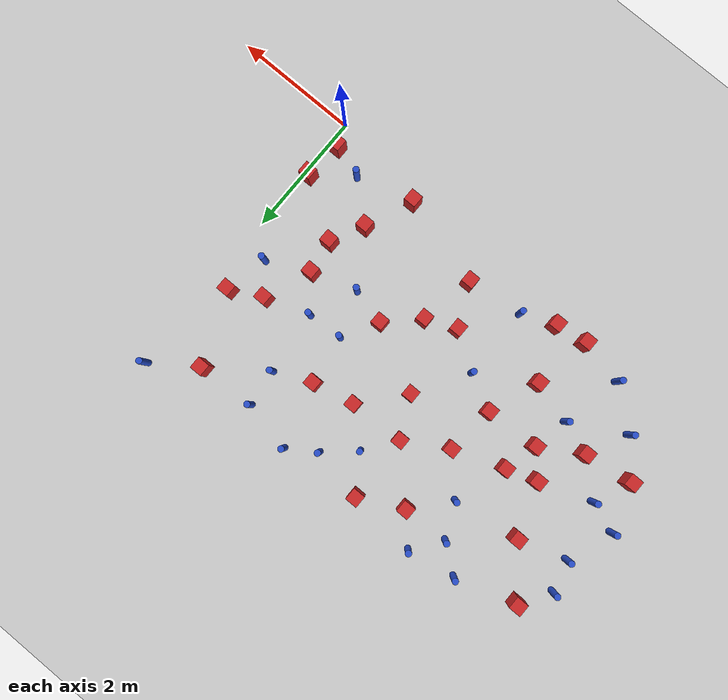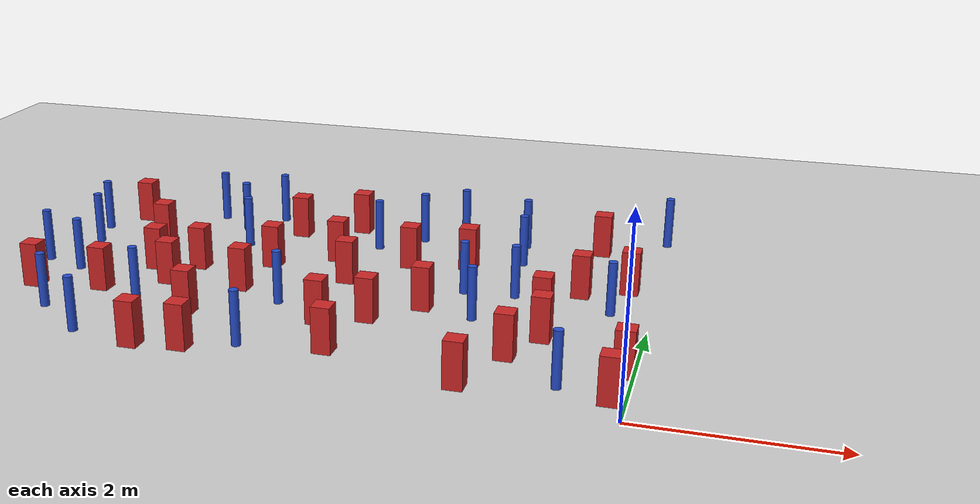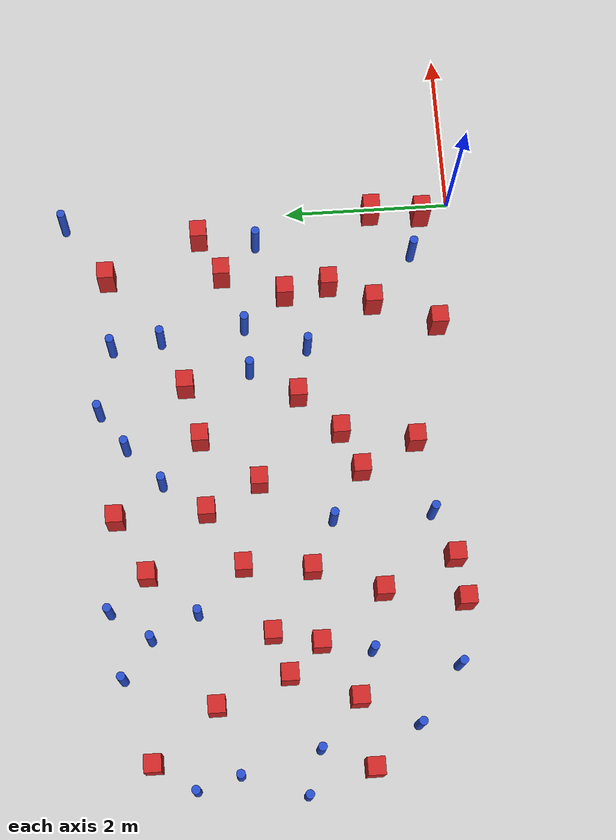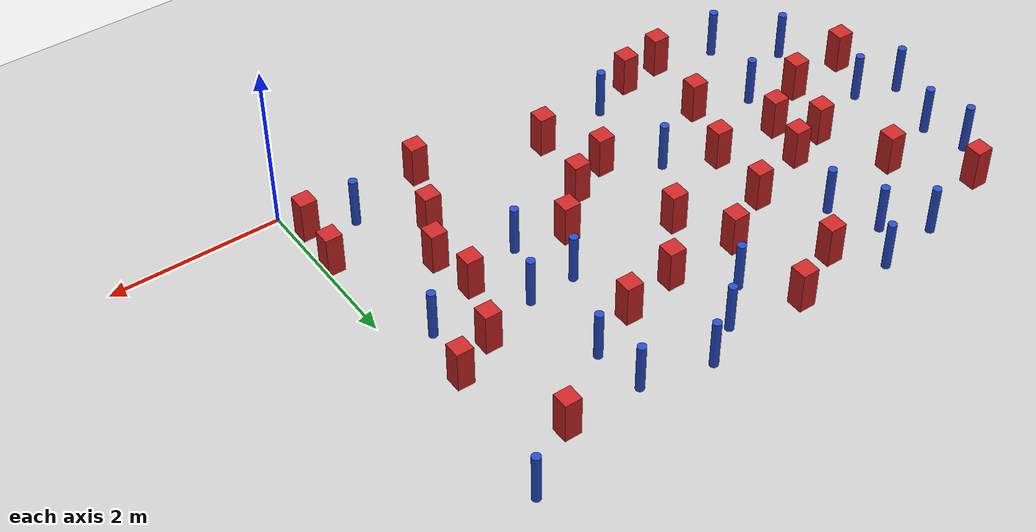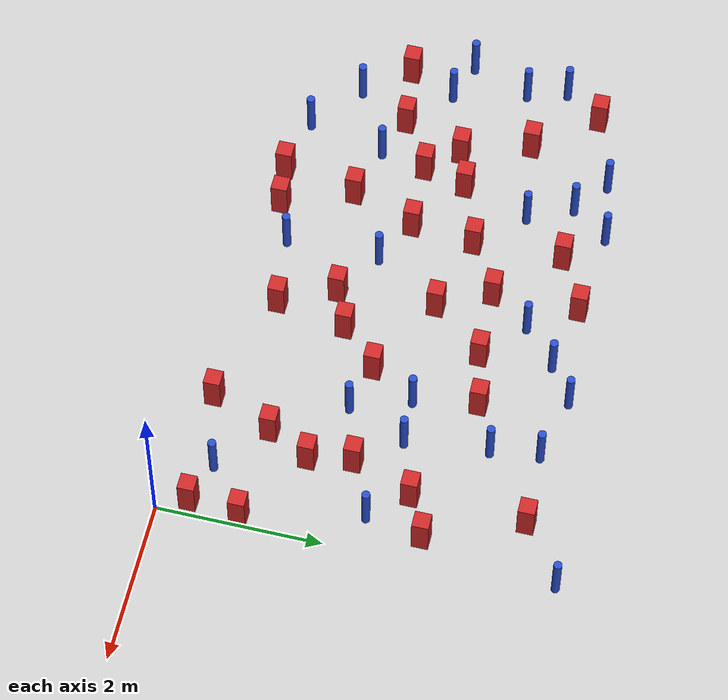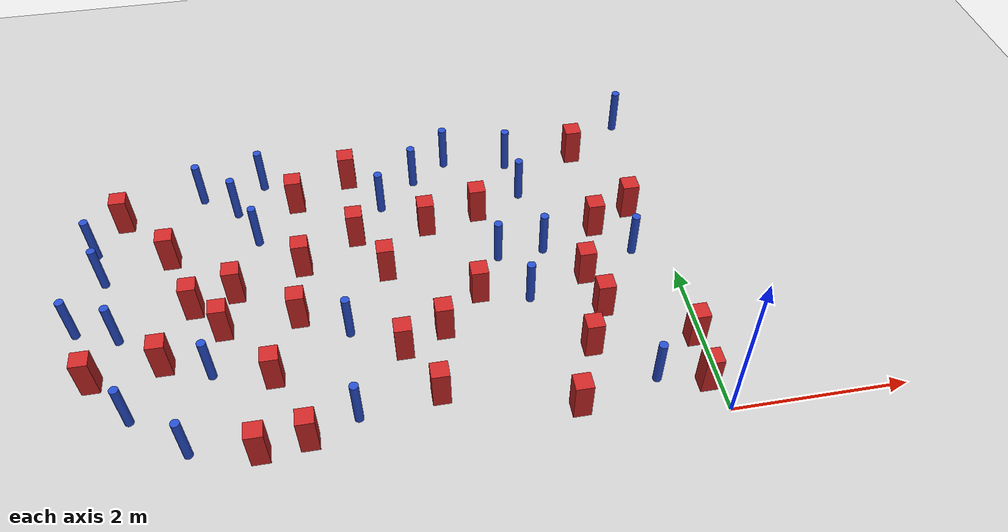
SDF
<sdf version="1.6">
 <world name="default">
  <model name="ground_plane">
   <static>1</static>
   <link name="link">
    <collision name="collision">
     <geometry><plane><normal>0 0 1</normal><size>100 100</size></plane></geometry>
     <surface><friction><ode><mu>100</mu><mu2>50</mu2></ode></friction></surface>
    </collision>
    <visual name="visual">
     <cast_shadows>0</cast_shadows>
     <geometry><plane><normal>0 0 1</normal><size>100 100</size></plane></geometry>
     <material>
      <ambient>1.0 1.0 1.0 1.0</ambient>
      <diffuse>0.8 0.8 0.8 1.0</diffuse>
      <specular>0.01 0.01 0.01 1.000000</specular>
     </material>
    </visual>
   </link>
  </model>
  <model name="pole_obstacle0">
   <static>true</static>
   <pose>-2.06327848858 2.57879154293 2.88873142074e-08 -9.90536690232e-09 4.6021994898e-07 -1.20965994968e-07</pose>
   <link name="link">
    <pose>0 0 0.3 0 -0 0</pose>
    <inertial>
     <mass>1</mass>
     <inertia><ixx>0.145833</ixx><ixy>0</ixy><ixz>0</ixz><iyy>0.145833</iyy><iyz>0</iyz><izz>0.125</izz></inertia>
    </inertial>
    <collision name="collision">
     <geometry><cylinder><radius>0.05</radius><length>.6</length></cylinder></geometry>
    </collision>
    <visual name="visual">
     <geometry><cylinder><radius>0.05</radius><length>.6</length></cylinder></geometry>
     <material>
      <script><name>Gazebo/Blue</name><uri>file://media/materials/scripts/gazebo.material</uri></script>
     </material>
    </visual>
   </link>
  </model>
  <model name="square_post_obstacle3">
   <static>true</static>
   <pose>-6.55645014747 3.90989048557 8.22691968438e-08 7.2212513382e-06 -7.54495500217e-07 2.29674213826e-05</pose>
   <link name="link">
    <pose>0 0 0.25 0 -0 0</pose>
    <inertial>
     <mass>100</mass>
     <inertia>
      <ixx>0.166667</ixx>
      <ixy>0</ixy>
      <ixz>0</ixz>
      <iyy>0.166667</iyy>
      <iyz>0</iyz>
      <izz>0.166667</izz>
     </inertia>
    </inertial>
    <collision name="collision"><geometry><box><size>.2 .2 .5</size></box></geometry></collision>
    <visual name="visual">
     <geometry><box><size>.2 .2 .5</size></box></geometry>
     <material>
      <script><name>Gazebo/Red</name><uri>file://media/materials/scripts/gazebo.material</uri></script>
     </material>
    </visual>
   </link>
  </model>
  <model name="square_post_obstacle6">
   <static>true</static>
   <pose>-4.39942618773 2.79059757768 8.22691968438e-08 7.2212513382e-06 -7.54495500217e-07 2.29674213826e-05</pose>
   <link name="link">
    <pose>0 0 0.25 0 -0 0</pose>
    <inertial>
     <mass>100</mass>
     <inertia>
      <ixx>0.166667</ixx>
      <ixy>0</ixy>
      <ixz>0</ixz>
      <iyy>0.166667</iyy>
      <iyz>0</iyz>
      <izz>0.166667</izz>
     </inertia>
    </inertial>
    <collision name="collision"><geometry><box><size>.2 .2 .5</size></box></geometry></collision>
    <visual name="visual">
     <geometry><box><size>.2 .2 .5</size></box></geometry>
     <material>
      <script><name>Gazebo/Red</name><uri>file://media/materials/scripts/gazebo.material</uri></script>
     </material>
    </visual>
   </link>
  </model>
  <model name="pole_obstacle4">
   <static>true</static>
   <pose>-5.45214630554 1.39098894112 2.88873142074e-08 -9.90536689445e-09 4.60219948999e-07 -1.20965994956e-07</pose>
   <link name="link">
    <pose>0 0 0.3 0 -0 0</pose>
    <inertial>
     <mass>1</mass>
     <inertia><ixx>0.145833</ixx><ixy>0</ixy><ixz>0</ixz><iyy>0.145833</iyy><iyz>0</iyz><izz>0.125</izz></inertia>
    </inertial>
    <collision name="collision">
     <geometry><cylinder><radius>0.05</radius><length>.6</length></cylinder></geometry>
    </collision>
    <visual name="visual">
     <geometry><cylinder><radius>0.05</radius><length>.6</length></cylinder></geometry>
     <material>
      <script><name>Gazebo/Blue</name><uri>file://media/materials/scripts/gazebo.material</uri></script>
     </material>
    </visual>
   </link>
  </model>
  <model name="pole_obstacle6">
   <static>true</static>
   <pose>-3.38358671933 3.67532625246 2.88873142074e-08 -9.90536690232e-09 4.6021994898e-07 -1.20965994968e-07</pose>
   <link name="link">
    <pose>0 0 0.3 0 -0 0</pose>
    <inertial>
     <mass>1</mass>
     <inertia><ixx>0.145833</ixx><ixy>0</ixy><ixz>0</ixz><iyy>0.145833</iyy><iyz>0</iyz><izz>0.125</izz></inertia>
    </inertial>
    <collision name="collision">
     <geometry><cylinder><radius>0.05</radius><length>.6</length></cylinder></geometry>
    </collision>
    <visual name="visual">
     <geometry><cylinder><radius>0.05</radius><length>.6</length></cylinder></geometry>
     <material>
      <script><name>Gazebo/Blue</name><uri>file://media/materials/scripts/gazebo.material</uri></script>
     </material>
    </visual>
   </link>
  </model>
  <model name="pole_obstacle7">
   <static>true</static>
   <pose>-1.61402399077 3.61474641128 2.88873142074e-08 -9.90536689791e-09 4.6021994899e-07 -1.20965994959e-07</pose>
   <link name="link">
    <pose>0 0 0.3 0 -0 0</pose>
    <inertial>
     <mass>1</mass>
     <inertia><ixx>0.145833</ixx><ixy>0</ixy><ixz>0</ixz><iyy>0.145833</iyy><iyz>0</iyz><izz>0.125</izz></inertia>
    </inertial>
    <collision name="collision">
     <geometry><cylinder><radius>0.05</radius><length>.6</length></cylinder></geometry>
    </collision>
    <visual name="visual">
     <geometry><cylinder><radius>0.05</radius><length>.6</length></cylinder></geometry>
     <material>
      <script><name>Gazebo/Blue</name><uri>file://media/materials/scripts/gazebo.material</uri></script>
     </material>
    </visual>
   </link>
  </model>
  <model name="square_post_obstacle11">
   <static>true</static>
   <pose>-5.96716999815 3.17955191712 8.22691968438e-08 7.2212513382e-06 -7.54495500217e-07 2.29674213826e-05</pose>
   <link name="link">
    <pose>0 0 0.25 0 -0 0</pose>
    <inertial>
     <mass>100</mass>
     <inertia>
      <ixx>0.166667</ixx>
      <ixy>0</ixy>
      <ixz>0</ixz>
      <iyy>0.166667</iyy>
      <iyz>0</iyz>
      <izz>0.166667</izz>
     </inertia>
    </inertial>
    <collision name="collision"><geometry><box><size>.2 .2 .5</size></box></geometry></collision>
    <visual name="visual">
     <geometry><box><size>.2 .2 .5</size></box></geometry>
     <material>
      <script><name>Gazebo/Red</name><uri>file://media/materials/scripts/gazebo.material</uri></script>
     </material>
    </visual>
   </link>
  </model>
  <model name="square_post_obstacle17">
   <static>true</static>
   <pose>-1.27304721057 1.04541945951 8.22691968438e-08 7.2212513382e-06 -7.54495500217e-07 2.29674213826e-05</pose>
   <link name="link">
    <pose>0 0 0.25 0 -0 0</pose>
    <inertial>
     <mass>100</mass>
     <inertia>
      <ixx>0.166667</ixx>
      <ixy>0</ixy>
      <ixz>0</ixz>
      <iyy>0.166667</iyy>
      <iyz>0</iyz>
      <izz>0.166667</izz>
     </inertia>
    </inertial>
    <collision name="collision"><geometry><box><size>.2 .2 .5</size></box></geometry></collision>
    <visual name="visual">
     <geometry><box><size>.2 .2 .5</size></box></geometry>
     <material>
      <script><name>Gazebo/Red</name><uri>file://media/materials/scripts/gazebo.material</uri></script>
     </material>
    </visual>
   </link>
  </model>
  <model name="square_post_obstacle18">
   <static>true</static>
   <pose>-3.41731523094 2.54991791525 8.22691968438e-08 7.2212513382e-06 -7.54495500217e-07 2.29674213826e-05</pose>
   <link name="link">
    <pose>0 0 0.25 0 -0 0</pose>
    <inertial>
     <mass>100</mass>
     <inertia>
      <ixx>0.166667</ixx>
      <ixy>0</ixy>
      <ixz>0</ixz>
      <iyy>0.166667</iyy>
      <iyz>0</iyz>
      <izz>0.166667</izz>
     </inertia>
    </inertial>
    <collision name="collision"><geometry><box><size>.2 .2 .5</size></box></geometry></collision>
    <visual name="visual">
     <geometry><box><size>.2 .2 .5</size></box></geometry>
     <material>
      <script><name>Gazebo/Red</name><uri>file://media/materials/scripts/gazebo.material</uri></script>
     </material>
    </visual>
   </link>
  </model>
  <model name="pole_obstacle29">
   <static>true</static>
   <pose>-6.87307380229 3.44570202861 2.88873142074e-08 -9.90536690245e-09 4.6021994898e-07 -1.20965994966e-07</pose>
   <link name="link">
    <pose>0 0 0.3 0 -0 0</pose>
    <inertial>
     <mass>1</mass>
     <inertia><ixx>0.145833</ixx><ixy>0</ixy><ixz>0</ixz><iyy>0.145833</iyy><iyz>0</iyz><izz>0.125</izz></inertia>
    </inertial>
    <collision name="collision">
     <geometry><cylinder><radius>0.05</radius><length>.6</length></cylinder></geometry>
    </collision>
    <visual name="visual">
     <geometry><cylinder><radius>0.05</radius><length>.6</length></cylinder></geometry>
     <material>
      <script><name>Gazebo/Blue</name><uri>file://media/materials/scripts/gazebo.material</uri></script>
     </material>
    </visual>
   </link>
  </model>
  <model name="pole_obstacle37">
   <static>true</static>
   <pose>-5.1838215764 3.87968076102 2.88873142074e-08 -9.90536690245e-09 4.6021994898e-07 -1.20965994966e-07</pose>
   <link name="link">
    <pose>0 0 0.3 0 -0 0</pose>
    <inertial>
     <mass>1</mass>
     <inertia><ixx>0.145833</ixx><ixy>0</ixy><ixz>0</ixz><iyy>0.145833</iyy><iyz>0</iyz><izz>0.125</izz></inertia>
    </inertial>
    <collision name="collision">
     <geometry><cylinder><radius>0.05</radius><length>.6</length></cylinder></geometry>
    </collision>
    <visual name="visual">
     <geometry><cylinder><radius>0.05</radius><length>.6</length></cylinder></geometry>
     <material>
      <script><name>Gazebo/Blue</name><uri>file://media/materials/scripts/gazebo.material</uri></script>
     </material>
    </visual>
   </link>
  </model>
  <model name="square_post_obstacle38">
   <static>true</static>
   <pose>-4.44067790375 3.89282106726 8.22691968438e-08 7.2212513382e-06 -7.54495500217e-07 2.29674213826e-05</pose>
   <link name="link">
    <pose>0 0 0.25 0 -0 0</pose>
    <inertial>
     <mass>100</mass>
     <inertia>
      <ixx>0.166667</ixx>
      <ixy>0</ixy>
      <ixz>0</ixz>
      <iyy>0.166667</iyy>
      <iyz>0</iyz>
      <izz>0.166667</izz>
     </inertia>
    </inertial>
    <collision name="collision"><geometry><box><size>.2 .2 .5</size></box></geometry></collision>
    <visual name="visual">
     <geometry><box><size>.2 .2 .5</size></box></geometry>
     <material>
      <script><name>Gazebo/Red</name><uri>file://media/materials/scripts/gazebo.material</uri></script>
     </material>
    </visual>
   </link>
  </model>
  <model name="pole_obstacle40">
   <static>true</static>
   <pose>-2.48389087228 4.37726319521 2.88873142074e-08 -9.90536689859e-09 4.60219948989e-07 -1.20965994961e-07</pose>
   <link name="link">
    <pose>0 0 0.3 0 -0 0</pose>
    <inertial>
     <mass>1</mass>
     <inertia><ixx>0.145833</ixx><ixy>0</ixy><ixz>0</ixz><iyy>0.145833</iyy><iyz>0</iyz><izz>0.125</izz></inertia>
    </inertial>
    <collision name="collision">
     <geometry><cylinder><radius>0.05</radius><length>.6</length></cylinder></geometry>
    </collision>
    <visual name="visual">
     <geometry><cylinder><radius>0.05</radius><length>.6</length></cylinder></geometry>
     <material>
      <script><name>Gazebo/Blue</name><uri>file://media/materials/scripts/gazebo.material</uri></script>
     </material>
    </visual>
   </link>
  </model>
  <model name="pole_obstacle50">
   <static>true</static>
   <pose>-0.065903541573 4.73085245209 2.88873142074e-08 -9.90536689653e-09 4.60219948994e-07 -1.20965994959e-07</pose>
   <link name="link">
    <pose>0 0 0.3 0 -0 0</pose>
    <inertial>
     <mass>1</mass>
     <inertia><ixx>0.145833</ixx><ixy>0</ixy><ixz>0</ixz><iyy>0.145833</iyy><iyz>0</iyz><izz>0.125</izz></inertia>
    </inertial>
    <collision name="collision">
     <geometry><cylinder><radius>0.05</radius><length>.6</length></cylinder></geometry>
    </collision>
    <visual name="visual">
     <geometry><cylinder><radius>0.05</radius><length>.6</length></cylinder></geometry>
     <material>
      <script><name>Gazebo/Blue</name><uri>file://media/materials/scripts/gazebo.material</uri></script>
     </material>
    </visual>
   </link>
  </model>
  <model name="square_post_obstacle55">
   <static>true</static>
   <pose>-6.73687707223 1.47962045912 8.22691968438e-08 7.2212513382e-06 -7.54495500217e-07 2.29674213826e-05</pose>
   <link name="link">
    <pose>0 0 0.25 0 -0 0</pose>
    <inertial>
     <mass>100</mass>
     <inertia>
      <ixx>0.166667</ixx>
      <ixy>0</ixy>
      <ixz>0</ixz>
      <iyy>0.166667</iyy>
      <iyz>0</iyz>
      <izz>0.166667</izz>
     </inertia>
    </inertial>
    <collision name="collision"><geometry><box><size>.2 .2 .5</size></box></geometry></collision>
    <visual name="visual">
     <geometry><box><size>.2 .2 .5</size></box></geometry>
     <material>
      <script><name>Gazebo/Red</name><uri>file://media/materials/scripts/gazebo.material</uri></script>
     </material>
    </visual>
   </link>
  </model>
  <model name="pole_obstacle54">
   <static>true</static>
   <pose>-5.67199320555 0.430135171374 2.88873142074e-08 -9.90536689981e-09 4.60219948986e-07 -1.20965994962e-07</pose>
   <link name="link">
    <pose>0 0 0.3 0 -0 0</pose>
    <inertial>
     <mass>1</mass>
     <inertia><ixx>0.145833</ixx><ixy>0</ixy><ixz>0</ixz><iyy>0.145833</iyy><iyz>0</iyz><izz>0.125</izz></inertia>
    </inertial>
    <collision name="collision">
     <geometry><cylinder><radius>0.05</radius><length>.6</length></cylinder></geometry>
    </collision>
    <visual name="visual">
     <geometry><cylinder><radius>0.05</radius><length>.6</length></cylinder></geometry>
     <material>
      <script><name>Gazebo/Blue</name><uri>file://media/materials/scripts/gazebo.material</uri></script>
     </material>
    </visual>
   </link>
  </model>
  <model name="square_post_obstacle61">
   <static>true</static>
   <pose>-0.311978459862 3.09757775151 8.22691968438e-08 7.2212513382e-06 -7.54495500217e-07 2.29674213826e-05</pose>
   <link name="link">
    <pose>0 0 0.25 0 -0 0</pose>
    <inertial>
     <mass>100</mass>
     <inertia>
      <ixx>0.166667</ixx>
      <ixy>0</ixy>
      <ixz>0</ixz>
      <iyy>0.166667</iyy>
      <iyz>0</iyz>
      <izz>0.166667</izz>
     </inertia>
    </inertial>
    <collision name="collision"><geometry><box><size>.2 .2 .5</size></box></geometry></collision>
    <visual name="visual">
     <geometry><box><size>.2 .2 .5</size></box></geometry>
     <material>
      <script><name>Gazebo/Red</name><uri>file://media/materials/scripts/gazebo.material</uri></script>
     </material>
    </visual>
   </link>
  </model>
  <model name="square_post_obstacle68">
   <static>true</static>
   <pose>-4.77301152274 1.21168934661 8.22691968438e-08 7.2212513382e-06 -7.54495500217e-07 2.29674213826e-05</pose>
   <link name="link">
    <pose>0 0 0.25 0 -0 0</pose>
    <inertial>
     <mass>100</mass>
     <inertia>
      <ixx>0.166667</ixx>
      <ixy>0</ixy>
      <ixz>0</ixz>
      <iyy>0.166667</iyy>
      <iyz>0</iyz>
      <izz>0.166667</izz>
     </inertia>
    </inertial>
    <collision name="collision"><geometry><box><size>.2 .2 .5</size></box></geometry></collision>
    <visual name="visual">
     <geometry><box><size>.2 .2 .5</size></box></geometry>
     <material>
      <script><name>Gazebo/Red</name><uri>file://media/materials/scripts/gazebo.material</uri></script>
     </material>
    </visual>
   </link>
  </model>
  <model name="pole_obstacle69">
   <static>true</static>
   <pose>-6.73661554646 2.95450943596 2.88873142074e-08 -9.90536690245e-09 4.6021994898e-07 -1.20965994966e-07</pose>
   <link name="link">
    <pose>0 0 0.3 0 -0 0</pose>
    <inertial>
     <mass>1</mass>
     <inertia><ixx>0.145833</ixx><ixy>0</ixy><ixz>0</ixz><iyy>0.145833</iyy><iyz>0</iyz><izz>0.125</izz></inertia>
    </inertial>
    <collision name="collision">
     <geometry><cylinder><radius>0.05</radius><length>.6</length></cylinder></geometry>
    </collision>
    <visual name="visual">
     <geometry><cylinder><radius>0.05</radius><length>.6</length></cylinder></geometry>
     <material>
      <script><name>Gazebo/Blue</name><uri>file://media/materials/scripts/gazebo.material</uri></script>
     </material>
    </visual>
   </link>
  </model>
  <model name="square_post_obstacle78">
   <static>true</static>
   <pose>-2.86003846571 1.55921314921 8.22691968438e-08 7.2212513382e-06 -7.54495500217e-07 2.29674213826e-05</pose>
   <link name="link">
    <pose>0 0 0.25 0 -0 0</pose>
    <inertial>
     <mass>100</mass>
     <inertia>
      <ixx>0.166667</ixx>
      <ixy>0</ixy>
      <ixz>0</ixz>
      <iyy>0.166667</iyy>
      <iyz>0</iyz>
      <izz>0.166667</izz>
     </inertia>
    </inertial>
    <collision name="collision"><geometry><box><size>.2 .2 .5</size></box></geometry></collision>
    <visual name="visual">
     <geometry><box><size>.2 .2 .5</size></box></geometry>
     <material>
      <script><name>Gazebo/Red</name><uri>file://media/materials/scripts/gazebo.material</uri></script>
     </material>
    </visual>
   </link>
  </model>
  <model name="square_post_obstacle89">
   <static>true</static>
   <pose>-4.43235889058 0.362734670037 8.22691968438e-08 7.2212513382e-06 -7.54495500217e-07 2.29674213826e-05</pose>
   <link name="link">
    <pose>0 0 0.25 0 -0 0</pose>
    <inertial>
     <mass>100</mass>
     <inertia>
      <ixx>0.166667</ixx>
      <ixy>0</ixy>
      <ixz>0</ixz>
      <iyy>0.166667</iyy>
      <iyz>0</iyz>
      <izz>0.166667</izz>
     </inertia>
    </inertial>
    <collision name="collision"><geometry><box><size>.2 .2 .5</size></box></geometry></collision>
    <visual name="visual">
     <geometry><box><size>.2 .2 .5</size></box></geometry>
     <material>
      <script><name>Gazebo/Red</name><uri>file://media/materials/scripts/gazebo.material</uri></script>
     </material>
    </visual>
   </link>
  </model>
  <model name="pole_obstacle107">
   <static>true</static>
   <pose>-1.80683374929 1.87409542558 2.88873142074e-08 -9.90536689672e-09 4.60219948993e-07 -1.20965994959e-07</pose>
   <link name="link">
    <pose>0 0 0.3 0 -0 0</pose>
    <inertial>
     <mass>1</mass>
     <inertia><ixx>0.145833</ixx><ixy>0</ixy><ixz>0</ixz><iyy>0.145833</iyy><iyz>0</iyz><izz>0.125</izz></inertia>
    </inertial>
    <collision name="collision">
     <geometry><cylinder><radius>0.05</radius><length>.6</length></cylinder></geometry>
    </collision>
    <visual name="visual">
     <geometry><cylinder><radius>0.05</radius><length>.6</length></cylinder></geometry>
     <material>
      <script><name>Gazebo/Blue</name><uri>file://media/materials/scripts/gazebo.material</uri></script>
     </material>
    </visual>
   </link>
  </model>
  <model name="square_post_obstacle95">
   <static>true</static>
   <pose>-0.781421788641 4.23457113308 8.22691968438e-08 7.2212513382e-06 -7.54495500217e-07 2.29674213826e-05</pose>
   <link name="link">
    <pose>0 0 0.25 0 -0 0</pose>
    <inertial>
     <mass>100</mass>
     <inertia>
      <ixx>0.166667</ixx>
      <ixy>0</ixy>
      <ixz>0</ixz>
      <iyy>0.166667</iyy>
      <iyz>0</iyz>
      <izz>0.166667</izz>
     </inertia>
    </inertial>
    <collision name="collision"><geometry><box><size>.2 .2 .5</size></box></geometry></collision>
    <visual name="visual">
     <geometry><box><size>.2 .2 .5</size></box></geometry>
     <material>
      <script><name>Gazebo/Red</name><uri>file://media/materials/scripts/gazebo.material</uri></script>
     </material>
    </visual>
   </link>
  </model>
  <model name="pole_obstacle109">
   <static>true</static>
   <pose>-0.430208164461 2.41103096239 2.88873142074e-08 -9.90536689663e-09 4.60219948993e-07 -1.20965994959e-07</pose>
   <link name="link">
    <pose>0 0 0.3 0 -0 0</pose>
    <inertial>
     <mass>1</mass>
     <inertia><ixx>0.145833</ixx><ixy>0</ixy><ixz>0</ixz><iyy>0.145833</iyy><iyz>0</iyz><izz>0.125</izz></inertia>
    </inertial>
    <collision name="collision">
     <geometry><cylinder><radius>0.05</radius><length>.6</length></cylinder></geometry>
    </collision>
    <visual name="visual">
     <geometry><cylinder><radius>0.05</radius><length>.6</length></cylinder></geometry>
     <material>
      <script><name>Gazebo/Blue</name><uri>file://media/materials/scripts/gazebo.material</uri></script>
     </material>
    </visual>
   </link>
  </model>
  <model name="square_post_obstacle100">
   <static>true</static>
   <pose>-5.32889154356 1.96702329394 8.22691968438e-08 7.2212513382e-06 -7.54495500217e-07 2.29674213826e-05</pose>
   <link name="link">
    <pose>0 0 0.25 0 -0 0</pose>
    <inertial>
     <mass>100</mass>
     <inertia>
      <ixx>0.166667</ixx>
      <ixy>0</ixy>
      <ixz>0</ixz>
      <iyy>0.166667</iyy>
      <iyz>0</iyz>
      <izz>0.166667</izz>
     </inertia>
    </inertial>
    <collision name="collision"><geometry><box><size>.2 .2 .5</size></box></geometry></collision>
    <visual name="visual">
     <geometry><box><size>.2 .2 .5</size></box></geometry>
     <material>
      <script><name>Gazebo/Red</name><uri>file://media/materials/scripts/gazebo.material</uri></script>
     </material>
    </visual>
   </link>
  </model>
  <model name="pole_obstacle114">
   <static>true</static>
   <pose>-6.50433784031 2.05330664433 2.88873142074e-08 -9.90536690245e-09 4.6021994898e-07 -1.20965994966e-07</pose>
   <link name="link">
    <pose>0 0 0.3 0 -0 0</pose>
    <inertial>
     <mass>1</mass>
     <inertia><ixx>0.145833</ixx><ixy>0</ixy><ixz>0</ixz><iyy>0.145833</iyy><iyz>0</iyz><izz>0.125</izz></inertia>
    </inertial>
    <collision name="collision">
     <geometry><cylinder><radius>0.05</radius><length>.6</length></cylinder></geometry>
    </collision>
    <visual name="visual">
     <geometry><cylinder><radius>0.05</radius><length>.6</length></cylinder></geometry>
     <material>
      <script><name>Gazebo/Blue</name><uri>file://media/materials/scripts/gazebo.material</uri></script>
     </material>
    </visual>
   </link>
  </model>
  <model name="pole_obstacle116">
   <static>true</static>
   <pose>-6.30110332545 0.937626592266 2.88873142074e-08 -9.90536689837e-09 4.60219948989e-07 -1.2096599496e-07</pose>
   <link name="link">
    <pose>0 0 0.3 0 -0 0</pose>
    <inertial>
     <mass>1</mass>
     <inertia><ixx>0.145833</ixx><ixy>0</ixy><ixz>0</ixz><iyy>0.145833</iyy><iyz>0</iyz><izz>0.125</izz></inertia>
    </inertial>
    <collision name="collision">
     <geometry><cylinder><radius>0.05</radius><length>.6</length></cylinder></geometry>
    </collision>
    <visual name="visual">
     <geometry><cylinder><radius>0.05</radius><length>.6</length></cylinder></geometry>
     <material>
      <script><name>Gazebo/Blue</name><uri>file://media/materials/scripts/gazebo.material</uri></script>
     </material>
    </visual>
   </link>
  </model>
  <model name="square_post_obstacle106">
   <static>true</static>
   <pose>-2.19941519551 3.35128262364 8.22691968438e-08 7.2212513382e-06 -7.54495500217e-07 2.29674213826e-05</pose>
   <link name="link">
    <pose>0 0 0.25 0 -0 0</pose>
    <inertial>
     <mass>100</mass>
     <inertia>
      <ixx>0.166667</ixx>
      <ixy>0</ixy>
      <ixz>0</ixz>
      <iyy>0.166667</iyy>
      <iyz>0</iyz>
      <izz>0.166667</izz>
     </inertia>
    </inertial>
    <collision name="collision"><geometry><box><size>.2 .2 .5</size></box></geometry></collision>
    <visual name="visual">
     <geometry><box><size>.2 .2 .5</size></box></geometry>
     <material>
      <script><name>Gazebo/Red</name><uri>file://media/materials/scripts/gazebo.material</uri></script>
     </material>
    </visual>
   </link>
  </model>
  <model name="pole_obstacle119">
   <static>true</static>
   <pose>-6.99538328926 2.22554994731 2.88873142074e-08 -9.90536690245e-09 4.6021994898e-07 -1.20965994966e-07</pose>
   <link name="link">
    <pose>0 0 0.3 0 -0 0</pose>
    <inertial>
     <mass>1</mass>
     <inertia><ixx>0.145833</ixx><ixy>0</ixy><ixz>0</ixz><iyy>0.145833</iyy><iyz>0</iyz><izz>0.125</izz></inertia>
    </inertial>
    <collision name="collision">
     <geometry><cylinder><radius>0.05</radius><length>.6</length></cylinder></geometry>
    </collision>
    <visual name="visual">
     <geometry><cylinder><radius>0.05</radius><length>.6</length></cylinder></geometry>
     <material>
      <script><name>Gazebo/Blue</name><uri>file://media/materials/scripts/gazebo.material</uri></script>
     </material>
    </visual>
   </link>
  </model>
  <model name="square_post_obstacle109">
   <static>true</static>
   <pose>-1.58479687438 0.287783790259 8.22691968438e-08 7.22125133819e-06 -7.54495500217e-07 2.29674213826e-05</pose>
   <link name="link">
    <pose>0 0 0.25 0 -0 0</pose>
    <inertial>
     <mass>100</mass>
     <inertia>
      <ixx>0.166667</ixx>
      <ixy>0</ixy>
      <ixz>0</ixz>
      <iyy>0.166667</iyy>
      <iyz>0</iyz>
      <izz>0.166667</izz>
     </inertia>
    </inertial>
    <collision name="collision"><geometry><box><size>.2 .2 .5</size></box></geometry></collision>
    <visual name="visual">
     <geometry><box><size>.2 .2 .5</size></box></geometry>
     <material>
      <script><name>Gazebo/Red</name><uri>file://media/materials/scripts/gazebo.material</uri></script>
     </material>
    </visual>
   </link>
  </model>
  <model name="square_post_obstacle110">
   <static>true</static>
   <pose>-1.1011045674 2.10007492861 8.22691968438e-08 7.2212513382e-06 -7.54495500217e-07 2.29674213826e-05</pose>
   <link name="link">
    <pose>0 0 0.25 0 -0 0</pose>
    <inertial>
     <mass>100</mass>
     <inertia>
      <ixx>0.166667</ixx>
      <ixy>0</ixy>
      <ixz>0</ixz>
      <iyy>0.166667</iyy>
      <iyz>0</iyz>
      <izz>0.166667</izz>
     </inertia>
    </inertial>
    <collision name="collision"><geometry><box><size>.2 .2 .5</size></box></geometry></collision>
    <visual name="visual">
     <geometry><box><size>.2 .2 .5</size></box></geometry>
     <material>
      <script><name>Gazebo/Red</name><uri>file://media/materials/scripts/gazebo.material</uri></script>
     </material>
    </visual>
   </link>
  </model>
  <model name="pole_obstacle122">
   <static>true</static>
   <pose>-4.9273118751 3.33745423628 2.88873142074e-08 -9.90536690245e-09 4.6021994898e-07 -1.20965994966e-07</pose>
   <link name="link">
    <pose>0 0 0.3 0 -0 0</pose>
    <inertial>
     <mass>1</mass>
     <inertia><ixx>0.145833</ixx><ixy>0</ixy><ixz>0</ixz><iyy>0.145833</iyy><iyz>0</iyz><izz>0.125</izz></inertia>
    </inertial>
    <collision name="collision">
     <geometry><cylinder><radius>0.05</radius><length>.6</length></cylinder></geometry>
    </collision>
    <visual name="visual">
     <geometry><cylinder><radius>0.05</radius><length>.6</length></cylinder></geometry>
     <material>
      <script><name>Gazebo/Blue</name><uri>file://media/materials/scripts/gazebo.material</uri></script>
     </material>
    </visual>
   </link>
  </model>
  <model name="square_post_obstacle114">
   <static>true</static>
   <pose>-4.47654700669 2.0080558634 8.22691968438e-08 7.2212513382e-06 -7.54495500217e-07 2.29674213826e-05</pose>
   <link name="link">
    <pose>0 0 0.25 0 -0 0</pose>
    <inertial>
     <mass>100</mass>
     <inertia>
      <ixx>0.166667</ixx>
      <ixy>0</ixy>
      <ixz>0</ixz>
      <iyy>0.166667</iyy>
      <iyz>0</iyz>
      <izz>0.166667</izz>
     </inertia>
    </inertial>
    <collision name="collision"><geometry><box><size>.2 .2 .5</size></box></geometry></collision>
    <visual name="visual">
     <geometry><box><size>.2 .2 .5</size></box></geometry>
     <material>
      <script><name>Gazebo/Red</name><uri>file://media/materials/scripts/gazebo.material</uri></script>
     </material>
    </visual>
   </link>
  </model>
  <model name="square_post_obstacle117">
   <static>true</static>
   <pose>-0.813264755734 2.84825771564 8.22691968438e-08 7.2212513382e-06 -7.54495500217e-07 2.29674213826e-05</pose>
   <link name="link">
    <pose>0 0 0.25 0 -0 0</pose>
    <inertial>
     <mass>100</mass>
     <inertia>
      <ixx>0.166667</ixx>
      <ixy>0</ixy>
      <ixz>0</ixz>
      <iyy>0.166667</iyy>
      <iyz>0</iyz>
      <izz>0.166667</izz>
     </inertia>
    </inertial>
    <collision name="collision"><geometry><box><size>.2 .2 .5</size></box></geometry></collision>
    <visual name="visual">
     <geometry><box><size>.2 .2 .5</size></box></geometry>
     <material>
      <script><name>Gazebo/Red</name><uri>file://media/materials/scripts/gazebo.material</uri></script>
     </material>
    </visual>
   </link>
  </model>
  <model name="square_post_obstacle120">
   <static>true</static>
   <pose>-3.76221381129 4.2322594772 8.22691968438e-08 7.2212513382e-06 -7.54495500217e-07 2.29674213826e-05</pose>
   <link name="link">
    <pose>0 0 0.25 0 -0 0</pose>
    <inertial>
     <mass>100</mass>
     <inertia>
      <ixx>0.166667</ixx>
      <ixy>0</ixy>
      <ixz>0</ixz>
      <iyy>0.166667</iyy>
      <iyz>0</iyz>
      <izz>0.166667</izz>
     </inertia>
    </inertial>
    <collision name="collision"><geometry><box><size>.2 .2 .5</size></box></geometry></collision>
    <visual name="visual">
     <geometry><box><size>.2 .2 .5</size></box></geometry>
     <material>
      <script><name>Gazebo/Red</name><uri>file://media/materials/scripts/gazebo.material</uri></script>
     </material>
    </visual>
   </link>
  </model>
  <model name="square_post_obstacle123">
   <static>true</static>
   <pose>-4.93765938121 0.290872937166 8.22691968438e-08 7.2212513382e-06 -7.54495500217e-07 2.29674213826e-05</pose>
   <link name="link">
    <pose>0 0 0.25 0 -0 0</pose>
    <inertial>
     <mass>100</mass>
     <inertia>
      <ixx>0.166667</ixx>
      <ixy>0</ixy>
      <ixz>0</ixz>
      <iyy>0.166667</iyy>
      <iyz>0</iyz>
      <izz>0.166667</izz>
     </inertia>
    </inertial>
    <collision name="collision"><geometry><box><size>.2 .2 .5</size></box></geometry></collision>
    <visual name="visual">
     <geometry><box><size>.2 .2 .5</size></box></geometry>
     <material>
      <script><name>Gazebo/Red</name><uri>file://media/materials/scripts/gazebo.material</uri></script>
     </material>
    </visual>
   </link>
  </model>
  <model name="square_post_obstacle124">
   <static>true</static>
   <pose>-0.155042600273 0.365735304146 8.22691968438e-08 7.2212513382e-06 -7.54495500217e-07 2.29674213826e-05</pose>
   <link name="link">
    <pose>0 0 0.25 0 -0 0</pose>
    <inertial>
     <mass>100</mass>
     <inertia>
      <ixx>0.166667</ixx>
      <ixy>0</ixy>
      <ixz>0</ixz>
      <iyy>0.166667</iyy>
      <iyz>0</iyz>
      <izz>0.166667</izz>
     </inertia>
    </inertial>
    <collision name="collision"><geometry><box><size>.2 .2 .5</size></box></geometry></collision>
    <visual name="visual">
     <geometry><box><size>.2 .2 .5</size></box></geometry>
     <material>
      <script><name>Gazebo/Red</name><uri>file://media/materials/scripts/gazebo.material</uri></script>
     </material>
    </visual>
   </link>
  </model>
  <model name="square_post_obstacle138">
   <static>true</static>
   <pose>-3.34007499094 1.35360348735 8.22691968438e-08 7.2212513382e-06 -7.54495500217e-07 2.29674213826e-05</pose>
   <link name="link">
    <pose>0 0 0.25 0 -0 0</pose>
    <inertial>
     <mass>100</mass>
     <inertia>
      <ixx>0.166667</ixx>
      <ixy>0</ixy>
      <ixz>0</ixz>
      <iyy>0.166667</iyy>
      <iyz>0</iyz>
      <izz>0.166667</izz>
     </inertia>
    </inertial>
    <collision name="collision"><geometry><box><size>.2 .2 .5</size></box></geometry></collision>
    <visual name="visual">
     <geometry><box><size>.2 .2 .5</size></box></geometry>
     <material>
      <script><name>Gazebo/Red</name><uri>file://media/materials/scripts/gazebo.material</uri></script>
     </material>
    </visual>
   </link>
  </model>
  <model name="pole_obstacle151">
   <static>true</static>
   <pose>-3.9124874429 0.568854345337 2.88873142074e-08 -9.90536689285e-09 4.60219949002e-07 -1.20965994953e-07</pose>
   <link name="link">
    <pose>0 0 0.3 0 -0 0</pose>
    <inertial>
     <mass>1</mass>
     <inertia><ixx>0.145833</ixx><ixy>0</ixy><ixz>0</ixz><iyy>0.145833</iyy><iyz>0</iyz><izz>0.125</izz></inertia>
    </inertial>
    <collision name="collision">
     <geometry><cylinder><radius>0.05</radius><length>.6</length></cylinder></geometry>
    </collision>
    <visual name="visual">
     <geometry><cylinder><radius>0.05</radius><length>.6</length></cylinder></geometry>
     <material>
      <script><name>Gazebo/Blue</name><uri>file://media/materials/scripts/gazebo.material</uri></script>
     </material>
    </visual>
   </link>
  </model>
  <model name="pole_obstacle155">
   <static>true</static>
   <pose>-0.668415285778 0.521945492717 2.88873142074e-08 -9.90536689703e-09 4.60219948992e-07 -1.20965994957e-07</pose>
   <link name="link">
    <pose>0 0 0.3 0 -0 0</pose>
    <inertial>
     <mass>1</mass>
     <inertia><ixx>0.145833</ixx><ixy>0</ixy><ixz>0</ixz><iyy>0.145833</iyy><iyz>0</iyz><izz>0.125</izz></inertia>
    </inertial>
    <collision name="collision">
     <geometry><cylinder><radius>0.05</radius><length>.6</length></cylinder></geometry>
    </collision>
    <visual name="visual">
     <geometry><cylinder><radius>0.05</radius><length>.6</length></cylinder></geometry>
     <material>
      <script><name>Gazebo/Blue</name><uri>file://media/materials/scripts/gazebo.material</uri></script>
     </material>
    </visual>
   </link>
  </model>
  <model name="square_post_obstacle145">
   <static>true</static>
   <pose>-2.86061749437 3.20973966595 8.22691968438e-08 7.2212513382e-06 -7.54495500217e-07 2.29674213826e-05</pose>
   <link name="link">
    <pose>0 0 0.25 0 -0 0</pose>
    <inertial>
     <mass>100</mass>
     <inertia>
      <ixx>0.166667</ixx>
      <ixy>0</ixy>
      <ixz>0</ixz>
      <iyy>0.166667</iyy>
      <iyz>0</iyz>
      <izz>0.166667</izz>
     </inertia>
    </inertial>
    <collision name="collision"><geometry><box><size>.2 .2 .5</size></box></geometry></collision>
    <visual name="visual">
     <geometry><box><size>.2 .2 .5</size></box></geometry>
     <material>
      <script><name>Gazebo/Red</name><uri>file://media/materials/scripts/gazebo.material</uri></script>
     </material>
    </visual>
   </link>
  </model>
  <model name="pole_obstacle162">
   <static>true</static>
   <pose>-1.49935280401 2.60839376901 2.88873142074e-08 -9.90536689791e-09 4.6021994899e-07 -1.20965994959e-07</pose>
   <link name="link">
    <pose>0 0 0.3 0 -0 0</pose>
    <inertial>
     <mass>1</mass>
     <inertia><ixx>0.145833</ixx><ixy>0</ixy><ixz>0</ixz><iyy>0.145833</iyy><iyz>0</iyz><izz>0.125</izz></inertia>
    </inertial>
    <collision name="collision">
     <geometry><cylinder><radius>0.05</radius><length>.6</length></cylinder></geometry>
    </collision>
    <visual name="visual">
     <geometry><cylinder><radius>0.05</radius><length>.6</length></cylinder></geometry>
     <material>
      <script><name>Gazebo/Blue</name><uri>file://media/materials/scripts/gazebo.material</uri></script>
     </material>
    </visual>
   </link>
  </model>
  <model name="pole_obstacle177">
   <static>true</static>
   <pose>-3.92095202027 1.72162883767 2.88873142074e-08 -9.90536689395e-09 4.60219949e-07 -1.20965994953e-07</pose>
   <link name="link">
    <pose>0 0 0.3 0 -0 0</pose>
    <inertial>
     <mass>1</mass>
     <inertia><ixx>0.145833</ixx><ixy>0</ixy><ixz>0</ixz><iyy>0.145833</iyy><iyz>0</iyz><izz>0.125</izz></inertia>
    </inertial>
    <collision name="collision">
     <geometry><cylinder><radius>0.05</radius><length>.6</length></cylinder></geometry>
    </collision>
    <visual name="visual">
     <geometry><cylinder><radius>0.05</radius><length>.6</length></cylinder></geometry>
     <material>
      <script><name>Gazebo/Blue</name><uri>file://media/materials/scripts/gazebo.material</uri></script>
     </material>
    </visual>
   </link>
  </model>
  <model name="pole_obstacle186">
   <static>true</static>
   <pose>-5.61451835328 4.20963457801 2.88873142074e-08 -9.90536690842e-09 4.60219948965e-07 -1.20965994976e-07</pose>
   <link name="link">
    <pose>0 0 0.3 0 -0 0</pose>
    <inertial>
     <mass>1</mass>
     <inertia><ixx>0.145833</ixx><ixy>0</ixy><ixz>0</ixz><iyy>0.145833</iyy><iyz>0</iyz><izz>0.125</izz></inertia>
    </inertial>
    <collision name="collision">
     <geometry><cylinder><radius>0.05</radius><length>.6</length></cylinder></geometry>
    </collision>
    <visual name="visual">
     <geometry><cylinder><radius>0.05</radius><length>.6</length></cylinder></geometry>
     <material>
      <script><name>Gazebo/Blue</name><uri>file://media/materials/scripts/gazebo.material</uri></script>
     </material>
    </visual>
   </link>
  </model>
  <model name="square_post_obstacle191">
   <static>true</static>
   <pose>-3.73432629451 3.17755742635 8.22691968438e-08 7.2212513382e-06 -7.54495500217e-07 2.29674213826e-05</pose>
   <link name="link">
    <pose>0 0 0.25 0 -0 0</pose>
    <inertial>
     <mass>100</mass>
     <inertia>
      <ixx>0.166667</ixx>
      <ixy>0</ixy>
      <ixz>0</ixz>
      <iyy>0.166667</iyy>
      <iyz>0</iyz>
      <izz>0.166667</izz>
     </inertia>
    </inertial>
    <collision name="collision"><geometry><box><size>.2 .2 .5</size></box></geometry></collision>
    <visual name="visual">
     <geometry><box><size>.2 .2 .5</size></box></geometry>
     <material>
      <script><name>Gazebo/Red</name><uri>file://media/materials/scripts/gazebo.material</uri></script>
     </material>
    </visual>
   </link>
  </model>
  <model name="square_post_obstacle198">
   <static>true</static>
   <pose>-5.18976796775 2.50473696421 8.22691968438e-08 7.2212513382e-06 -7.54495500217e-07 2.29674213826e-05</pose>
   <link name="link">
    <pose>0 0 0.25 0 -0 0</pose>
    <inertial>
     <mass>100</mass>
     <inertia>
      <ixx>0.166667</ixx>
      <ixy>0</ixy>
      <ixz>0</ixz>
      <iyy>0.166667</iyy>
      <iyz>0</iyz>
      <izz>0.166667</izz>
     </inertia>
    </inertial>
    <collision name="collision"><geometry><box><size>.2 .2 .5</size></box></geometry></collision>
    <visual name="visual">
     <geometry><box><size>.2 .2 .5</size></box></geometry>
     <material>
      <script><name>Gazebo/Red</name><uri>file://media/materials/scripts/gazebo.material</uri></script>
     </material>
    </visual>
   </link>
  </model>
  <model name="square_post_obstacle204">
   <static>true</static>
   <pose>-5.96583931721 1.58451152921 8.22691968438e-08 7.2212513382e-06 -7.54495500217e-07 2.29674213826e-05</pose>
   <link name="link">
    <pose>0 0 0.25 0 -0 0</pose>
    <inertial>
     <mass>100</mass>
     <inertia>
      <ixx>0.166667</ixx>
      <ixy>0</ixy>
      <ixz>0</ixz>
      <iyy>0.166667</iyy>
      <iyz>0</iyz>
      <izz>0.166667</izz>
     </inertia>
    </inertial>
    <collision name="collision"><geometry><box><size>.2 .2 .5</size></box></geometry></collision>
    <visual name="visual">
     <geometry><box><size>.2 .2 .5</size></box></geometry>
     <material>
      <script><name>Gazebo/Red</name><uri>file://media/materials/scripts/gazebo.material</uri></script>
     </material>
    </visual>
   </link>
  </model>
  <model name="square_post_obstacle206">
   <static>true</static>
   <pose>-5.66738889266 2.34814021209 8.22691968438e-08 7.2212513382e-06 -7.54495500217e-07 2.29674213826e-05</pose>
   <link name="link">
    <pose>0 0 0.25 0 -0 0</pose>
    <inertial>
     <mass>100</mass>
     <inertia>
      <ixx>0.166667</ixx>
      <ixy>0</ixy>
      <ixz>0</ixz>
      <iyy>0.166667</iyy>
      <iyz>0</iyz>
      <izz>0.166667</izz>
     </inertia>
    </inertial>
    <collision name="collision"><geometry><box><size>.2 .2 .5</size></box></geometry></collision>
    <visual name="visual">
     <geometry><box><size>.2 .2 .5</size></box></geometry>
     <material>
      <script><name>Gazebo/Red</name><uri>file://media/materials/scripts/gazebo.material</uri></script>
     </material>
    </visual>
   </link>
  </model>
  <model name="pole_obstacle188">
   <static>true</static>
   <pose>-2.92801923084 4.08263225189 2.88873142074e-08 -9.90536689859e-09 4.60219948989e-07 -1.20965994961e-07</pose>
   <link name="link">
    <pose>0 0 0.3 0 -0 0</pose>
    <inertial>
     <mass>1</mass>
     <inertia><ixx>0.145833</ixx><ixy>0</ixy><ixz>0</ixz><iyy>0.145833</iyy><iyz>0</iyz><izz>0.125</izz></inertia>
    </inertial>
    <collision name="collision">
     <geometry><cylinder><radius>0.05</radius><length>.6</length></cylinder></geometry>
    </collision>
    <visual name="visual">
     <geometry><cylinder><radius>0.05</radius><length>.6</length></cylinder></geometry>
     <material>
      <script><name>Gazebo/Blue</name><uri>file://media/materials/scripts/gazebo.material</uri></script>
     </material>
    </visual>
   </link>
  </model>
  <model name="pole_obstacle199">
   <static>true</static>
   <pose>-1.68695724871 4.20319746803 2.88873142074e-08 -9.90536689852e-09 4.60219948989e-07 -1.2096599496e-07</pose>
   <link name="link">
    <pose>0 0 0.3 0 -0 0</pose>
    <inertial>
     <mass>1</mass>
     <inertia><ixx>0.145833</ixx><ixy>0</ixy><ixz>0</ixz><iyy>0.145833</iyy><iyz>0</iyz><izz>0.125</izz></inertia>
    </inertial>
    <collision name="collision">
     <geometry><cylinder><radius>0.05</radius><length>.6</length></cylinder></geometry>
    </collision>
    <visual name="visual">
     <geometry><cylinder><radius>0.05</radius><length>.6</length></cylinder></geometry>
     <material>
      <script><name>Gazebo/Blue</name><uri>file://media/materials/scripts/gazebo.material</uri></script>
     </material>
    </visual>
   </link>
  </model>
  <model name="pole_obstacle200">
   <static>true</static>
   <pose>-4.85122562439 4.33731091036 2.88873142074e-08 -9.90536690842e-09 4.60219948965e-07 -1.20965994976e-07</pose>
   <link name="link">
    <pose>0 0 0.3 0 -0 0</pose>
    <inertial>
     <mass>1</mass>
     <inertia><ixx>0.145833</ixx><ixy>0</ixy><ixz>0</ixz><iyy>0.145833</iyy><iyz>0</iyz><izz>0.125</izz></inertia>
    </inertial>
    <collision name="collision">
     <geometry><cylinder><radius>0.05</radius><length>.6</length></cylinder></geometry>
    </collision>
    <visual name="visual">
     <geometry><cylinder><radius>0.05</radius><length>.6</length></cylinder></geometry>
     <material>
      <script><name>Gazebo/Blue</name><uri>file://media/materials/scripts/gazebo.material</uri></script>
     </material>
    </visual>
   </link>
  </model>
  <model name="square_post_obstacle211">
   <static>true</static>
   <pose>-0.0994111992681 0.978723278525 8.22691968438e-08 7.2212513382e-06 -7.54495500217e-07 2.29674213826e-05</pose>
   <link name="link">
    <pose>0 0 0.25 0 -0 0</pose>
    <inertial>
     <mass>100</mass>
     <inertia>
      <ixx>0.166667</ixx>
      <ixy>0</ixy>
      <ixz>0</ixz>
      <iyy>0.166667</iyy>
      <iyz>0</iyz>
      <izz>0.166667</izz>
     </inertia>
    </inertial>
    <collision name="collision"><geometry><box><size>.2 .2 .5</size></box></geometry></collision>
    <visual name="visual">
     <geometry><box><size>.2 .2 .5</size></box></geometry>
     <material>
      <script><name>Gazebo/Red</name><uri>file://media/materials/scripts/gazebo.material</uri></script>
     </material>
    </visual>
   </link>
  </model>
  <model name="square_post_obstacle218">
   <static>true</static>
   <pose>-1.01137996738 1.56778996466 8.22691968438e-08 7.2212513382e-06 -7.54495500217e-07 2.29674213826e-05</pose>
   <link name="link">
    <pose>0 0 0.25 0 -0 0</pose>
    <inertial>
     <mass>100</mass>
     <inertia>
      <ixx>0.166667</ixx>
      <ixy>0</ixy>
      <ixz>0</ixz>
      <iyy>0.166667</iyy>
      <iyz>0</iyz>
      <izz>0.166667</izz>
     </inertia>
    </inertial>
    <collision name="collision"><geometry><box><size>.2 .2 .5</size></box></geometry></collision>
    <visual name="visual">
     <geometry><box><size>.2 .2 .5</size></box></geometry>
     <material>
      <script><name>Gazebo/Red</name><uri>file://media/materials/scripts/gazebo.material</uri></script>
     </material>
    </visual>
   </link>
  </model>
  <model name="square_post_obstacle221">
   <static>true</static>
   <pose>-3.02263996738 0.689850964659 8.22691968438e-08 7.2212513382e-06 -7.54495500217e-07 2.29674213826e-05</pose>
   <link name="link">
    <pose>0 0 0.25 0 -0 0</pose>
    <inertial>
     <mass>100</mass>
     <inertia>
      <ixx>0.166667</ixx>
      <ixy>0</ixy>
      <ixz>0</ixz>
      <iyy>0.166667</iyy>
      <iyz>0</iyz>
      <izz>0.166667</izz>
     </inertia>
    </inertial>
    <collision name="collision"><geometry><box><size>.2 .2 .5</size></box></geometry></collision>
    <visual name="visual">
     <geometry><box><size>.2 .2 .5</size></box></geometry>
     <material>
      <script><name>Gazebo/Red</name><uri>file://media/materials/scripts/gazebo.material</uri></script>
     </material>
    </visual>
   </link>
  </model>
  <model name="square_post_obstacle228">
   <static>true</static>
   <pose>-2.38530996738 2.02508996466 8.22691968438e-08 7.2212513382e-06 -7.54495500217e-07 2.29674213826e-05</pose>
   <link name="link">
    <pose>0 0 0.25 0 -0 0</pose>
    <inertial>
     <mass>100</mass>
     <inertia>
      <ixx>0.166667</ixx>
      <ixy>0</ixy>
      <ixz>0</ixz>
      <iyy>0.166667</iyy>
      <iyz>0</iyz>
      <izz>0.166667</izz>
     </inertia>
    </inertial>
    <collision name="collision"><geometry><box><size>.2 .2 .5</size></box></geometry></collision>
    <visual name="visual">
     <geometry><box><size>.2 .2 .5</size></box></geometry>
     <material>
      <script><name>Gazebo/Red</name><uri>file://media/materials/scripts/gazebo.material</uri></script>
     </material>
    </visual>
   </link>
  </model>
 </world>
</sdf>
